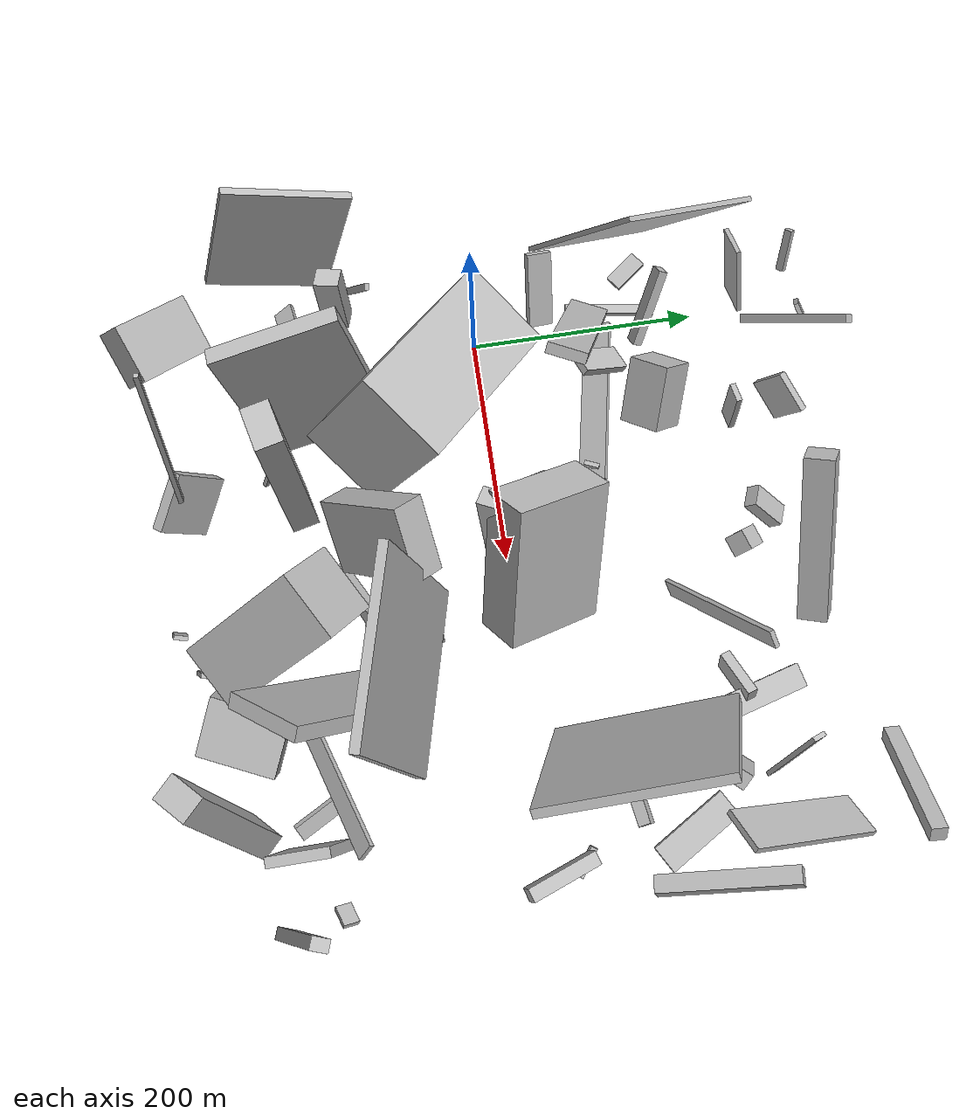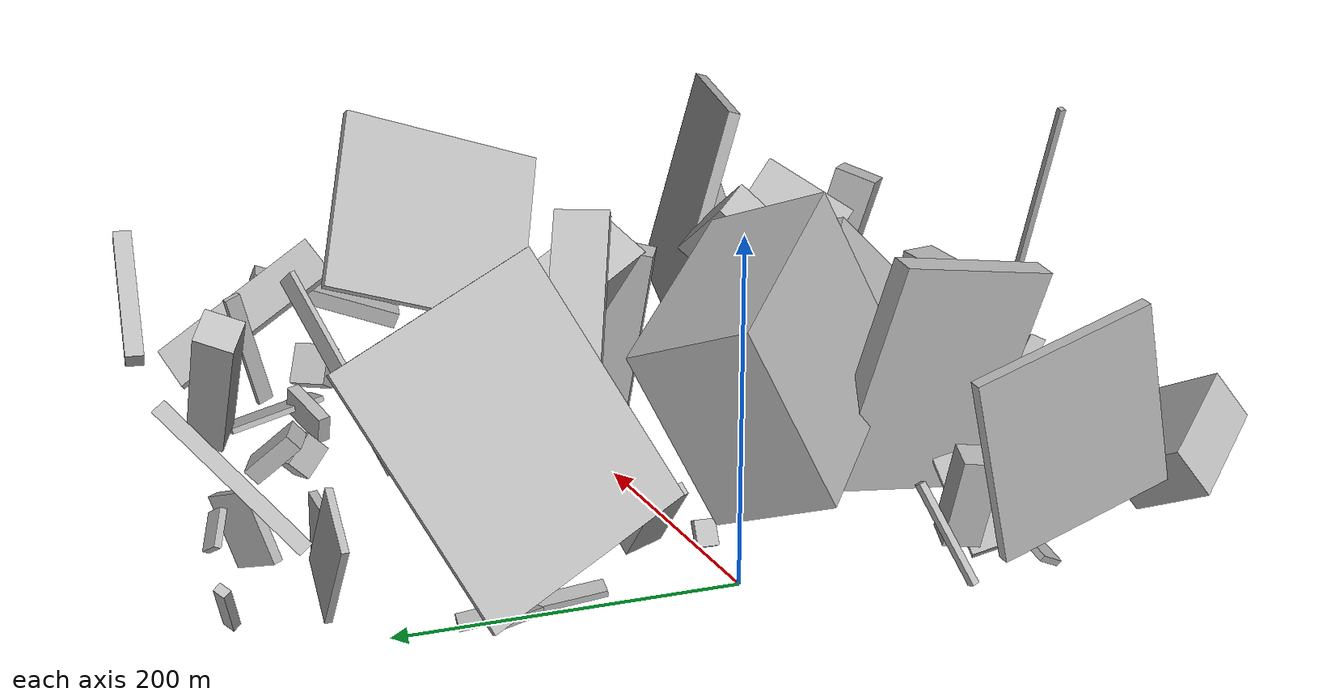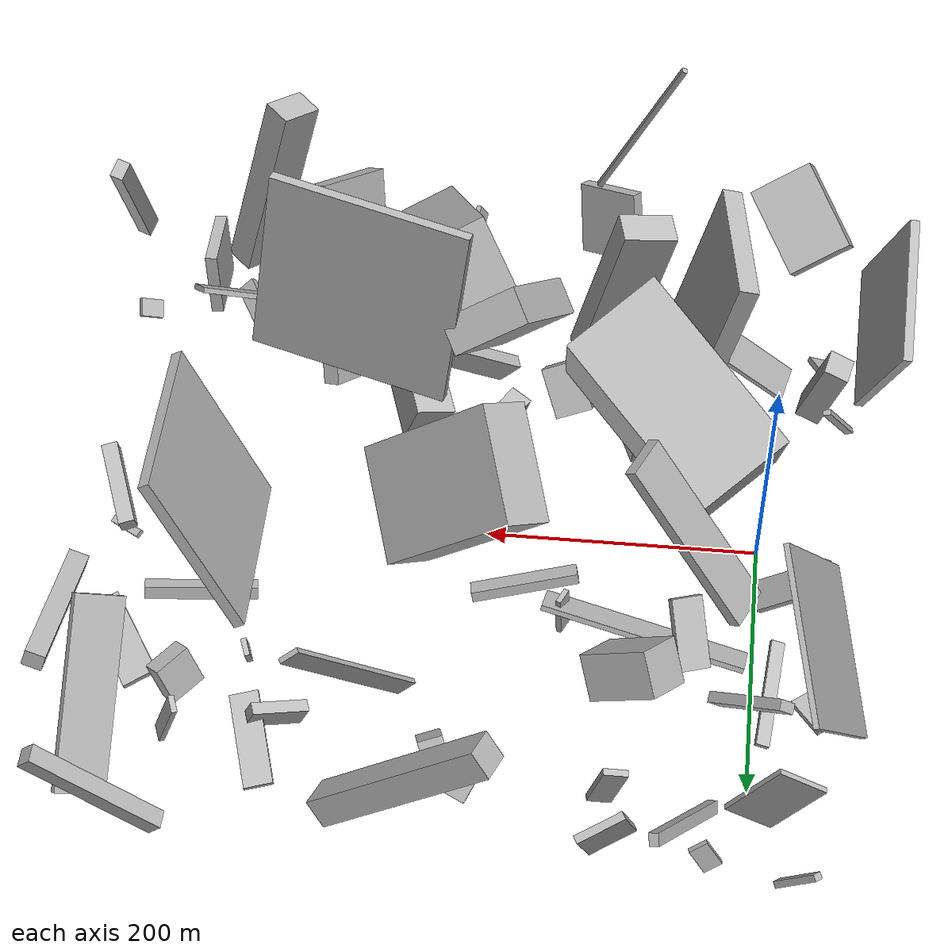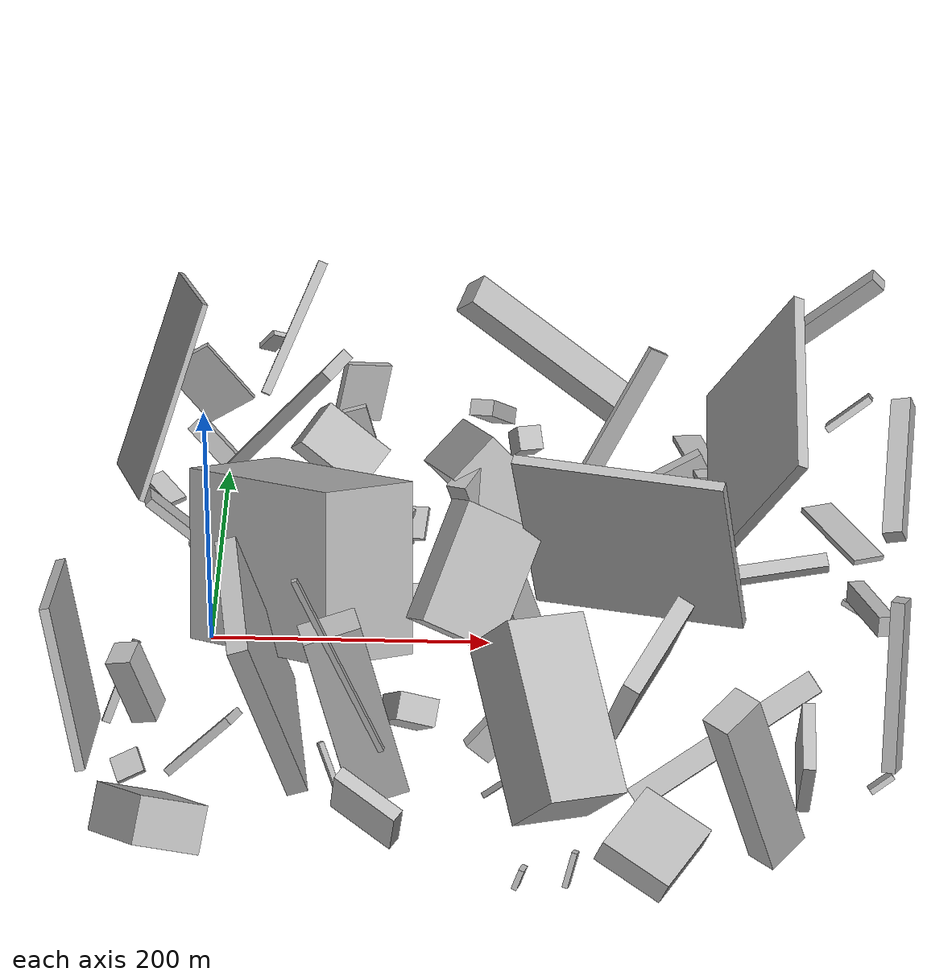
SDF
<sdf version="1.6">
 <world name="default">
  <scene>
   <sky><clouds><speed>12</speed></clouds></sky>
   <ambient>0.4 0.4 0.4 1</ambient>
   <background>0.7 0.7 0.7 1</background>
   <shadows>1</shadows>
  </scene>
  <gravity>0 0 -9.8066</gravity>
  <magnetic_field>6e-06 2.3e-05 -4.2e-05</magnetic_field>
  <physics default="0" name="default_physics" type="ode">
   <ode>
    <solver>
     <type>quick</type>
     <iters>10</iters>
     <sor>1.0</sor>
     <use_dynamic_moi_rescaling>0</use_dynamic_moi_rescaling>
    </solver>
    <constraints>
     <cfm>0</cfm>
     <erp>0.2</erp>
     <contact_max_correcting_vel>100</contact_max_correcting_vel>
     <contact_surface_layer>0.001</contact_surface_layer>
    </constraints>
   </ode>
   <max_step_size>0.004</max_step_size>
   <real_time_factor>1</real_time_factor>
   <real_time_update_rate>250</real_time_update_rate>
  </physics>
  <light name="sun" type="directional">
   <pose>0 0 10 0 0 0</pose>
   <diffuse>0.8 0.8 0.8 1</diffuse>
   <specular>0.2 0.2 0.2 1</specular>
   <attenuation>
    <range>1000</range>
    <constant>0.9</constant>
    <linear>0.01</linear>
    <quadratic>0.001</quadratic>
   </attenuation>
   <direction>-0.5 0.1 -0.9</direction>
  </light>
  <model name="building_1">
   <static>0</static>
   <pose>295.7368813536935 -180.78192036104932 83.84618709407602 0.9961033002784777 -0.3977826952683271 2.776172849643623</pose>
   <link name="link">
    <gravity>0</gravity>
    <pose>0 0 36.5 0 0 0</pose>
    <collision name="collision"><geometry><box><size>13 150 73</size></box></geometry></collision>
    <visual name="visual">
     <cast_shadows>0</cast_shadows>
     <geometry><box><size>13 150 73</size></box></geometry>
     <material>
      <script>
       <uri>model://HANNAS_wall/materials/scripts</uri>
       <uri>model://HANNAS_wall/materials/textures</uri>
       <name>vrc/HANNAS_wall</name>
      </script>
     </material>
    </visual>
   </link>
  </model>
  <model name="building_2">
   <static>0</static>
   <pose>422.6108472823036 -186.3875628921473 33.45652886647019 -0.06520774264016993 0.2650912755314768 -1.5560999492663983</pose>
   <link name="link">
    <gravity>0</gravity>
    <pose>0 0 25.0 0 0 0</pose>
    <collision name="collision"><geometry><box><size>56 9 50</size></box></geometry></collision>
    <visual name="visual">
     <cast_shadows>0</cast_shadows>
     <geometry><box><size>56 9 50</size></box></geometry>
     <material>
      <script>
       <uri>model://HANNAS_wall/materials/scripts</uri>
       <uri>model://HANNAS_wall/materials/textures</uri>
       <name>vrc/HANNAS_wall</name>
      </script>
     </material>
    </visual>
   </link>
  </model>
  <model name="building_3">
   <static>0</static>
   <pose>308.8106083871112 -76.49337372178847 92.5226786474042 0.25505919730946447 -0.05398683686127357 -0.25559730548888393</pose>
   <link name="link">
    <gravity>0</gravity>
    <pose>0 0 75.0 0 0 0</pose>
    <collision name="collision"><geometry><box><size>150 8 150</size></box></geometry></collision>
    <visual name="visual">
     <cast_shadows>0</cast_shadows>
     <geometry><box><size>150 8 150</size></box></geometry>
     <material>
      <script>
       <uri>model://HANNAS_wall/materials/scripts</uri>
       <uri>model://HANNAS_wall/materials/textures</uri>
       <name>vrc/HANNAS_wall</name>
      </script>
     </material>
    </visual>
   </link>
  </model>
  <model name="building_4">
   <static>0</static>
   <pose>208.7619174876653 63.43073856104613 82.52114537507333 1.0101545699164758 -0.5817987842879372 0.6449589706050929</pose>
   <link name="link">
    <gravity>0</gravity>
    <pose>0 0 43.5 0 0 0</pose>
    <collision name="collision"><geometry><box><size>41 127 87</size></box></geometry></collision>
    <visual name="visual">
     <cast_shadows>0</cast_shadows>
     <geometry><box><size>41 127 87</size></box></geometry>
     <material>
      <script>
       <uri>model://HANNAS_wall/materials/scripts</uri>
       <uri>model://HANNAS_wall/materials/textures</uri>
       <name>vrc/HANNAS_wall</name>
      </script>
     </material>
    </visual>
   </link>
  </model>
  <model name="building_5">
   <static>0</static>
   <pose>221.66999670546554 196.96087477723657 25.422922087789306 0.7909478976885873 -0.11235982905937597 -2.8002753814420815</pose>
   <link name="link">
    <gravity>0</gravity>
    <pose>0 0 9.0 0 0 0</pose>
    <collision name="collision"><geometry><box><size>18 23 18</size></box></geometry></collision>
    <visual name="visual">
     <cast_shadows>0</cast_shadows>
     <geometry><box><size>18 23 18</size></box></geometry>
     <material>
      <script>
       <uri>model://HANNAS_wall/materials/scripts</uri>
       <uri>model://HANNAS_wall/materials/textures</uri>
       <name>vrc/HANNAS_wall</name>
      </script>
     </material>
    </visual>
   </link>
  </model>
  <model name="building_6">
   <static>0</static>
   <pose>98.23700007259629 -26.356498254115763 97.60374661458036 1.2315676956228758 -0.3610051393874356 -0.7565758702244203</pose>
   <link name="link">
    <gravity>0</gravity>
    <pose>0 0 39.5 0 0 0</pose>
    <collision name="collision"><geometry><box><size>150 122 79</size></box></geometry></collision>
    <visual name="visual">
     <cast_shadows>0</cast_shadows>
     <geometry><box><size>150 122 79</size></box></geometry>
     <material>
      <script>
       <uri>model://HANNAS_wall/materials/scripts</uri>
       <uri>model://HANNAS_wall/materials/textures</uri>
       <name>vrc/HANNAS_wall</name>
      </script>
     </material>
    </visual>
   </link>
  </model>
  <model name="building_7">
   <static>0</static>
   <pose>161.04999515005898 -115.65128886296142 25.68721365616851 1.0550971694208386 0.7559176208977418 -1.7831272360021468</pose>
   <link name="link">
    <gravity>0</gravity>
    <pose>0 0 14.5 0 0 0</pose>
    <collision name="collision"><geometry><box><size>20 39 29</size></box></geometry></collision>
    <visual name="visual">
     <cast_shadows>0</cast_shadows>
     <geometry><box><size>20 39 29</size></box></geometry>
     <material>
      <script>
       <uri>model://HANNAS_wall/materials/scripts</uri>
       <uri>model://HANNAS_wall/materials/textures</uri>
       <name>vrc/HANNAS_wall</name>
      </script>
     </material>
    </visual>
   </link>
  </model>
  <model name="building_8">
   <static>0</static>
   <pose>210.82005218285278 -7.286987723569774 85.70120462464921 2.4436120600912172 -1.2863596477908994 -2.9525587250908223</pose>
   <link name="link">
    <gravity>0</gravity>
    <pose>0 0 8.0 0 0 0</pose>
    <collision name="collision"><geometry><box><size>150 27 16</size></box></geometry></collision>
    <visual name="visual">
     <cast_shadows>0</cast_shadows>
     <geometry><box><size>150 27 16</size></box></geometry>
     <material>
      <script>
       <uri>model://HANNAS_wall/materials/scripts</uri>
       <uri>model://HANNAS_wall/materials/textures</uri>
       <name>vrc/HANNAS_wall</name>
      </script>
     </material>
    </visual>
   </link>
  </model>
  <model name="building_9">
   <static>0</static>
   <pose>96.43864564451536 -190.13350481140986 32.22985164346281 1.026526883701326 -0.07369833106508514 0.6020639888466551</pose>
   <link name="link">
    <gravity>0</gravity>
    <pose>0 0 2.0 0 0 0</pose>
    <collision name="collision"><geometry><box><size>4 47 4</size></box></geometry></collision>
    <visual name="visual">
     <cast_shadows>0</cast_shadows>
     <geometry><box><size>4 47 4</size></box></geometry>
     <material>
      <script>
       <uri>model://HANNAS_wall/materials/scripts</uri>
       <uri>model://HANNAS_wall/materials/textures</uri>
       <name>vrc/HANNAS_wall</name>
      </script>
     </material>
    </visual>
   </link>
  </model>
  <model name="building_10">
   <static>0</static>
   <pose>-8.167323975146681 125.88273813397751 14.13494491703987 -1.8905470069442585 0.13438098253228764 1.4715578596129175</pose>
   <link name="link">
    <gravity>0</gravity>
    <pose>0 0 5.0 0 0 0</pose>
    <collision name="collision"><geometry><box><size>81 4 10</size></box></geometry></collision>
    <visual name="visual">
     <cast_shadows>0</cast_shadows>
     <geometry><box><size>81 4 10</size></box></geometry>
     <material>
      <script>
       <uri>model://HANNAS_wall/materials/scripts</uri>
       <uri>model://HANNAS_wall/materials/textures</uri>
       <name>vrc/HANNAS_wall</name>
      </script>
     </material>
    </visual>
   </link>
  </model>
  <model name="building_11">
   <static>0</static>
   <pose>25.375936470683293 237.09456933609454 45.363422211061824 0.48694102899145403 0.6754755308988402 1.7268078196470809</pose>
   <link name="link">
    <gravity>0</gravity>
    <pose>0 0 53.5 0 0 0</pose>
    <collision name="collision"><geometry><box><size>9 7 107</size></box></geometry></collision>
    <visual name="visual">
     <cast_shadows>0</cast_shadows>
     <geometry><box><size>9 7 107</size></box></geometry>
     <material>
      <script>
       <uri>model://HANNAS_wall/materials/scripts</uri>
       <uri>model://HANNAS_wall/materials/textures</uri>
       <name>vrc/HANNAS_wall</name>
      </script>
     </material>
    </visual>
   </link>
  </model>
  <model name="building_12">
   <static>0</static>
   <pose>228.22056925296357 257.81061388296655 71.30180712042132 0.756241143536196 -0.330818132722503 1.2265587045634754</pose>
   <link name="link">
    <gravity>0</gravity>
    <pose>0 0 11.0 0 0 0</pose>
    <collision name="collision"><geometry><box><size>25 150 22</size></box></geometry></collision>
    <visual name="visual">
     <cast_shadows>0</cast_shadows>
     <geometry><box><size>25 150 22</size></box></geometry>
     <material>
      <script>
       <uri>model://HANNAS_wall/materials/scripts</uri>
       <uri>model://HANNAS_wall/materials/textures</uri>
       <name>vrc/HANNAS_wall</name>
      </script>
     </material>
    </visual>
   </link>
  </model>
  <model name="building_13">
   <static>0</static>
   <pose>115.55918684886306 -188.58714439941866 79.3382628684201 1.6825379331052386 -1.3541487835041475 -3.0084643579737027</pose>
   <link name="link">
    <gravity>0</gravity>
    <pose>0 0 12.0 0 0 0</pose>
    <collision name="collision"><geometry><box><size>150 41 24</size></box></geometry></collision>
    <visual name="visual">
     <cast_shadows>0</cast_shadows>
     <geometry><box><size>150 41 24</size></box></geometry>
     <material>
      <script>
       <uri>model://HANNAS_wall/materials/scripts</uri>
       <uri>model://HANNAS_wall/materials/textures</uri>
       <name>vrc/HANNAS_wall</name>
      </script>
     </material>
    </visual>
   </link>
  </model>
  <model name="building_14">
   <static>0</static>
   <pose>178.55365674678973 -128.89592078171097 107.75264479671938 0.6459679806178423 -0.5757209220800804 -2.987046087700367</pose>
   <link name="link">
    <gravity>0</gravity>
    <pose>0 0 44.5 0 0 0</pose>
    <collision name="collision"><geometry><box><size>62 28 89</size></box></geometry></collision>
    <visual name="visual">
     <cast_shadows>0</cast_shadows>
     <geometry><box><size>62 28 89</size></box></geometry>
     <material>
      <script>
       <uri>model://HANNAS_wall/materials/scripts</uri>
       <uri>model://HANNAS_wall/materials/textures</uri>
       <name>vrc/HANNAS_wall</name>
      </script>
     </material>
    </visual>
   </link>
  </model>
  <model name="building_15">
   <static>0</static>
   <pose>1.8090490918759454 151.29986784711664 49.27867669038588 2.1079861352014673 -0.6596827023735925 2.628690347995033</pose>
   <link name="link">
    <gravity>0</gravity>
    <pose>0 0 4.0 0 0 0</pose>
    <collision name="collision"><geometry><box><size>69 14 8</size></box></geometry></collision>
    <visual name="visual">
     <cast_shadows>0</cast_shadows>
     <geometry><box><size>69 14 8</size></box></geometry>
     <material>
      <script>
       <uri>model://HANNAS_wall/materials/scripts</uri>
       <uri>model://HANNAS_wall/materials/textures</uri>
       <name>vrc/HANNAS_wall</name>
      </script>
     </material>
    </visual>
   </link>
  </model>
  <model name="building_16">
   <static>0</static>
   <pose>40.303690544630115 -150.41583666341828 91.07222318615385 1.3024834080263998 -0.1374684430563424 1.712151853449219</pose>
   <link name="link">
    <gravity>0</gravity>
    <pose>0 0 7.5 0 0 0</pose>
    <collision name="collision"><geometry><box><size>109 150 15</size></box></geometry></collision>
    <visual name="visual">
     <cast_shadows>0</cast_shadows>
     <geometry><box><size>109 150 15</size></box></geometry>
     <material>
      <script>
       <uri>model://HANNAS_wall/materials/scripts</uri>
       <uri>model://HANNAS_wall/materials/textures</uri>
       <name>vrc/HANNAS_wall</name>
      </script>
     </material>
    </visual>
   </link>
  </model>
  <model name="building_17">
   <static>0</static>
   <pose>-35.819549619033516 284.5344902303843 43.34115765932148 1.059756671300898 0.5448442917373411 2.040307811260382</pose>
   <link name="link">
    <gravity>0</gravity>
    <pose>0 0 3.5 0 0 0</pose>
    <collision name="collision"><geometry><box><size>5 38 7</size></box></geometry></collision>
    <visual name="visual">
     <cast_shadows>0</cast_shadows>
     <geometry><box><size>5 38 7</size></box></geometry>
     <material>
      <script>
       <uri>model://HANNAS_wall/materials/scripts</uri>
       <uri>model://HANNAS_wall/materials/textures</uri>
       <name>vrc/HANNAS_wall</name>
      </script>
     </material>
    </visual>
   </link>
  </model>
  <model name="building_18">
   <static>0</static>
   <pose>98.16012085786303 255.40510485729044 34.8536880145819 1.7516815153417267 -0.3203703402351192 -2.6862198423830854</pose>
   <link name="link">
    <gravity>0</gravity>
    <pose>0 0 3.0 0 0 0</pose>
    <collision name="collision"><geometry><box><size>37 44 6</size></box></geometry></collision>
    <visual name="visual">
     <cast_shadows>0</cast_shadows>
     <geometry><box><size>37 44 6</size></box></geometry>
     <material>
      <script>
       <uri>model://HANNAS_wall/materials/scripts</uri>
       <uri>model://HANNAS_wall/materials/textures</uri>
       <name>vrc/HANNAS_wall</name>
      </script>
     </material>
    </visual>
   </link>
  </model>
  <model name="building_19">
   <static>0</static>
   <pose>435.5140587561989 153.21011721911765 12.569193363985281 -1.578417181450938 1.3840192431398248 -2.6045134866351742</pose>
   <link name="link">
    <gravity>0</gravity>
    <pose>0 0 36.5 0 0 0</pose>
    <collision name="collision"><geometry><box><size>4 26 73</size></box></geometry></collision>
    <visual name="visual">
     <cast_shadows>0</cast_shadows>
     <geometry><box><size>4 26 73</size></box></geometry>
     <material>
      <script>
       <uri>model://HANNAS_wall/materials/scripts</uri>
       <uri>model://HANNAS_wall/materials/textures</uri>
       <name>vrc/HANNAS_wall</name>
      </script>
     </material>
    </visual>
   </link>
  </model>
  <model name="building_20">
   <static>0</static>
   <pose>357.98558500572545 87.65114190587832 84.09165166484178 0.3295269870446786 0.44223764762688395 0.16980355664930852</pose>
   <link name="link">
    <gravity>0</gravity>
    <pose>0 0 66.5 0 0 0</pose>
    <collision name="collision"><geometry><box><size>8 150 133</size></box></geometry></collision>
    <visual name="visual">
     <cast_shadows>0</cast_shadows>
     <geometry><box><size>8 150 133</size></box></geometry>
     <material>
      <script>
       <uri>model://HANNAS_wall/materials/scripts</uri>
       <uri>model://HANNAS_wall/materials/textures</uri>
       <name>vrc/HANNAS_wall</name>
      </script>
     </material>
    </visual>
   </link>
  </model>
  <model name="building_21">
   <static>0</static>
   <pose>275.7528646671101 161.55839098359877 68.66317240256541 2.189252774818488 0.13745550272944276 2.0222227898869614</pose>
   <link name="link">
    <gravity>0</gravity>
    <pose>0 0 8.0 0 0 0</pose>
    <collision name="collision"><geometry><box><size>4 150 16</size></box></geometry></collision>
    <visual name="visual">
     <cast_shadows>0</cast_shadows>
     <geometry><box><size>4 150 16</size></box></geometry>
     <material>
      <script>
       <uri>model://HANNAS_wall/materials/scripts</uri>
       <uri>model://HANNAS_wall/materials/textures</uri>
       <name>vrc/HANNAS_wall</name>
      </script>
     </material>
    </visual>
   </link>
  </model>
  <model name="building_22">
   <static>0</static>
   <pose>406.79374707984107 206.48491571596023 52.94027879882602 1.6993004112780177 -0.3279665537717322 -1.2258447793902818</pose>
   <link name="link">
    <gravity>0</gravity>
    <pose>0 0 2.0 0 0 0</pose>
    <collision name="collision"><geometry><box><size>12 90 4</size></box></geometry></collision>
    <visual name="visual">
     <cast_shadows>0</cast_shadows>
     <geometry><box><size>12 90 4</size></box></geometry>
     <material>
      <script>
       <uri>model://HANNAS_wall/materials/scripts</uri>
       <uri>model://HANNAS_wall/materials/textures</uri>
       <name>vrc/HANNAS_wall</name>
      </script>
     </material>
    </visual>
   </link>
  </model>
  <model name="building_23">
   <static>0</static>
   <pose>122.7568381232353 -246.39871250602715 35.839617000780606 -0.39595834134432883 -0.35462425167331113 2.6229077374172203</pose>
   <link name="link">
    <gravity>0</gravity>
    <pose>0 0 27.5 0 0 0</pose>
    <collision name="collision"><geometry><box><size>51 10 55</size></box></geometry></collision>
    <visual name="visual">
     <cast_shadows>0</cast_shadows>
     <geometry><box><size>51 10 55</size></box></geometry>
     <material>
      <script>
       <uri>model://HANNAS_wall/materials/scripts</uri>
       <uri>model://HANNAS_wall/materials/textures</uri>
       <name>vrc/HANNAS_wall</name>
      </script>
     </material>
    </visual>
   </link>
  </model>
  <model name="building_24">
   <static>0</static>
   <pose>47.503625194846116 7.29317286253275 13.646597568018557 -1.679485133877428 1.0820573720514215 3.116887877153287</pose>
   <link name="link">
    <gravity>0</gravity>
    <pose>0 0 7.0 0 0 0</pose>
    <collision name="collision"><geometry><box><size>16 4 14</size></box></geometry></collision>
    <visual name="visual">
     <cast_shadows>0</cast_shadows>
     <geometry><box><size>16 4 14</size></box></geometry>
     <material>
      <script>
       <uri>model://HANNAS_wall/materials/scripts</uri>
       <uri>model://HANNAS_wall/materials/textures</uri>
       <name>vrc/HANNAS_wall</name>
      </script>
     </material>
    </visual>
   </link>
  </model>
  <model name="building_25">
   <static>0</static>
   <pose>263.602926681496 -94.78202329098576 24.77259529289604 0.30822225691555183 -0.09447905485271808 -1.2537336690591834</pose>
   <link name="link">
    <gravity>0</gravity>
    <pose>0 0 17.5 0 0 0</pose>
    <collision name="collision"><geometry><box><size>56 30 35</size></box></geometry></collision>
    <visual name="visual">
     <cast_shadows>0</cast_shadows>
     <geometry><box><size>56 30 35</size></box></geometry>
     <material>
      <script>
       <uri>model://HANNAS_wall/materials/scripts</uri>
       <uri>model://HANNAS_wall/materials/textures</uri>
       <name>vrc/HANNAS_wall</name>
      </script>
     </material>
    </visual>
   </link>
  </model>
  <model name="building_26">
   <static>0</static>
   <pose>203.1278325349338 235.50308257651005 30.666357204405127 -0.3225998727009928 -0.8140510669074341 1.4225069682464369</pose>
   <link name="link">
    <gravity>0</gravity>
    <pose>0 0 19.0 0 0 0</pose>
    <collision name="collision"><geometry><box><size>12 19 38</size></box></geometry></collision>
    <visual name="visual">
     <cast_shadows>0</cast_shadows>
     <geometry><box><size>12 19 38</size></box></geometry>
     <material>
      <script>
       <uri>model://HANNAS_wall/materials/scripts</uri>
       <uri>model://HANNAS_wall/materials/textures</uri>
       <name>vrc/HANNAS_wall</name>
      </script>
     </material>
    </visual>
   </link>
  </model>
  <model name="building_27">
   <static>0</static>
   <pose>77.8065790075875 85.79542994181668 29.377461191263492 -1.0237469499091358 -0.11512349018614486 -0.19993301439333414</pose>
   <link name="link">
    <gravity>0</gravity>
    <pose>0 0 12.5 0 0 0</pose>
    <collision name="collision"><geometry><box><size>150 4 25</size></box></geometry></collision>
    <visual name="visual">
     <cast_shadows>0</cast_shadows>
     <geometry><box><size>150 4 25</size></box></geometry>
     <material>
      <script>
       <uri>model://HANNAS_wall/materials/scripts</uri>
       <uri>model://HANNAS_wall/materials/textures</uri>
       <name>vrc/HANNAS_wall</name>
      </script>
     </material>
    </visual>
   </link>
  </model>
  <model name="building_28">
   <static>0</static>
   <pose>42.5041904131806 123.4113145124433 34.06262289794258 -0.8792258991615638 0.14616300300805263 -2.773620669722566</pose>
   <link name="link">
    <gravity>0</gravity>
    <pose>0 0 26.0 0 0 0</pose>
    <collision name="collision"><geometry><box><size>23 7 52</size></box></geometry></collision>
    <visual name="visual">
     <cast_shadows>0</cast_shadows>
     <geometry><box><size>23 7 52</size></box></geometry>
     <material>
      <script>
       <uri>model://HANNAS_wall/materials/scripts</uri>
       <uri>model://HANNAS_wall/materials/textures</uri>
       <name>vrc/HANNAS_wall</name>
      </script>
     </material>
    </visual>
   </link>
  </model>
  <model name="building_29">
   <static>0</static>
   <pose>29.78716101736316 280.93699358734943 60.27233391941458 -1.102335367605262 0.4740542080339787 0.3781707924088866</pose>
   <link name="link">
    <gravity>0</gravity>
    <pose>0 0 2.0 0 0 0</pose>
    <collision name="collision"><geometry><box><size>14 21 4</size></box></geometry></collision>
    <visual name="visual">
     <cast_shadows>0</cast_shadows>
     <geometry><box><size>14 21 4</size></box></geometry>
     <material>
      <script>
       <uri>model://HANNAS_wall/materials/scripts</uri>
       <uri>model://HANNAS_wall/materials/textures</uri>
       <name>vrc/HANNAS_wall</name>
      </script>
     </material>
    </visual>
   </link>
  </model>
  <model name="building_30">
   <static>0</static>
   <pose>323.7779026936621 -242.3091713738737 25.419554537035996 -3.104166780343979 -0.3790659483637897 2.6977535538960065</pose>
   <link name="link">
    <gravity>0</gravity>
    <pose>0 0 9.0 0 0 0</pose>
    <collision name="collision"><geometry><box><size>54 70 18</size></box></geometry></collision>
    <visual name="visual">
     <cast_shadows>0</cast_shadows>
     <geometry><box><size>54 70 18</size></box></geometry>
     <material>
      <script>
       <uri>model://HANNAS_wall/materials/scripts</uri>
       <uri>model://HANNAS_wall/materials/textures</uri>
       <name>vrc/HANNAS_wall</name>
      </script>
     </material>
    </visual>
   </link>
  </model>
  <model name="building_31">
   <static>0</static>
   <pose>227.59608747879207 -132.60309131720334 47.67451312438696 1.8452771187517627 -0.8052101512885611 -3.047454131739947</pose>
   <link name="link">
    <gravity>0</gravity>
    <pose>0 0 5.0 0 0 0</pose>
    <collision name="collision"><geometry><box><size>22 92 10</size></box></geometry></collision>
    <visual name="visual">
     <cast_shadows>0</cast_shadows>
     <geometry><box><size>22 92 10</size></box></geometry>
     <material>
      <script>
       <uri>model://HANNAS_wall/materials/scripts</uri>
       <uri>model://HANNAS_wall/materials/textures</uri>
       <name>vrc/HANNAS_wall</name>
      </script>
     </material>
    </visual>
   </link>
  </model>
  <model name="building_32">
   <static>0</static>
   <pose>339.3060908748006 233.00285359625857 15.387837925606021 -0.6133330174174692 1.3768931852065562 -1.919357759118602</pose>
   <link name="link">
    <gravity>0</gravity>
    <pose>0 0 35.0 0 0 0</pose>
    <collision name="collision"><geometry><box><size>4 21 70</size></box></geometry></collision>
    <visual name="visual">
     <cast_shadows>0</cast_shadows>
     <geometry><box><size>4 21 70</size></box></geometry>
     <material>
      <script>
       <uri>model://HANNAS_wall/materials/scripts</uri>
       <uri>model://HANNAS_wall/materials/textures</uri>
       <name>vrc/HANNAS_wall</name>
      </script>
     </material>
    </visual>
   </link>
  </model>
  <model name="building_33">
   <static>0</static>
   <pose>442.79964206204 192.39076477571774 56.59156894241039 -0.9082888526458461 -0.6070165514046092 -1.6119919847277115</pose>
   <link name="link">
    <gravity>0</gravity>
    <pose>0 0 19.5 0 0 0</pose>
    <collision name="collision"><geometry><box><size>138 5 39</size></box></geometry></collision>
    <visual name="visual">
     <cast_shadows>0</cast_shadows>
     <geometry><box><size>138 5 39</size></box></geometry>
     <material>
      <script>
       <uri>model://HANNAS_wall/materials/scripts</uri>
       <uri>model://HANNAS_wall/materials/textures</uri>
       <name>vrc/HANNAS_wall</name>
      </script>
     </material>
    </visual>
   </link>
  </model>
  <model name="building_34">
   <static>0</static>
   <pose>81.65973984703349 156.17640021175362 52.71041061432207 -0.6170793415063043 -0.613807994006209 2.850271183212828</pose>
   <link name="link">
    <gravity>0</gravity>
    <pose>0 0 17.0 0 0 0</pose>
    <collision name="collision"><geometry><box><size>56 37 34</size></box></geometry></collision>
    <visual name="visual">
     <cast_shadows>0</cast_shadows>
     <geometry><box><size>56 37 34</size></box></geometry>
     <material>
      <script>
       <uri>model://HANNAS_wall/materials/scripts</uri>
       <uri>model://HANNAS_wall/materials/textures</uri>
       <name>vrc/HANNAS_wall</name>
      </script>
     </material>
    </visual>
   </link>
  </model>
  <model name="building_35">
   <static>0</static>
   <pose>0.048551106930018406 59.682302777089404 34.48454750978946 -0.8159756839233487 0.2434942724910893 1.7093020116009405</pose>
   <link name="link">
    <gravity>0</gravity>
    <pose>0 0 32.5 0 0 0</pose>
    <collision name="collision"><geometry><box><size>22 7 65</size></box></geometry></collision>
    <visual name="visual">
     <cast_shadows>0</cast_shadows>
     <geometry><box><size>22 7 65</size></box></geometry>
     <material>
      <script>
       <uri>model://HANNAS_wall/materials/scripts</uri>
       <uri>model://HANNAS_wall/materials/textures</uri>
       <name>vrc/HANNAS_wall</name>
      </script>
     </material>
    </visual>
   </link>
  </model>
  <model name="building_36">
   <static>0</static>
   <pose>402.6105862773733 72.79522533799063 17.879804062345816 3.0306276094115 -0.42555654164595497 1.7583172732470311</pose>
   <link name="link">
    <gravity>0</gravity>
    <pose>0 0 5.0 0 0 0</pose>
    <collision name="collision"><geometry><box><size>11 82 10</size></box></geometry></collision>
    <visual name="visual">
     <cast_shadows>0</cast_shadows>
     <geometry><box><size>11 82 10</size></box></geometry>
     <material>
      <script>
       <uri>model://HANNAS_wall/materials/scripts</uri>
       <uri>model://HANNAS_wall/materials/textures</uri>
       <name>vrc/HANNAS_wall</name>
      </script>
     </material>
    </visual>
   </link>
  </model>
  <model name="building_37">
   <static>0</static>
   <pose>368.9136136428288 -166.96642143792866 49.60860742975099 0.6824574826989308 -0.4933743568992541 0.3586721530700256</pose>
   <link name="link">
    <gravity>0</gravity>
    <pose>0 0 2.0 0 0 0</pose>
    <collision name="collision"><geometry><box><size>150 17 4</size></box></geometry></collision>
    <visual name="visual">
     <cast_shadows>0</cast_shadows>
     <geometry><box><size>150 17 4</size></box></geometry>
     <material>
      <script>
       <uri>model://HANNAS_wall/materials/scripts</uri>
       <uri>model://HANNAS_wall/materials/textures</uri>
       <name>vrc/HANNAS_wall</name>
      </script>
     </material>
    </visual>
   </link>
  </model>
  <model name="building_38">
   <static>0</static>
   <pose>137.79619768504335 86.24802784318153 19.08140068472559 -0.08596125020662607 0.09400020396734808 -1.9994242632441719</pose>
   <link name="link">
    <gravity>0</gravity>
    <pose>0 0 17.0 0 0 0</pose>
    <collision name="collision"><geometry><box><size>13 4 34</size></box></geometry></collision>
    <visual name="visual">
     <cast_shadows>0</cast_shadows>
     <geometry><box><size>13 4 34</size></box></geometry>
     <material>
      <script>
       <uri>model://HANNAS_wall/materials/scripts</uri>
       <uri>model://HANNAS_wall/materials/textures</uri>
       <name>vrc/HANNAS_wall</name>
      </script>
     </material>
    </visual>
   </link>
  </model>
  <model name="building_39">
   <static>0</static>
   <pose>463.65731645833745 24.39479785501196 16.714294568934317 -1.9408002150195371 0.1774100441119037 -0.609211644673577</pose>
   <link name="link">
    <gravity>0</gravity>
    <pose>0 0 3.0 0 0 0</pose>
    <collision name="collision"><geometry><box><size>27 4 6</size></box></geometry></collision>
    <visual name="visual">
     <cast_shadows>0</cast_shadows>
     <geometry><box><size>27 4 6</size></box></geometry>
     <material>
      <script>
       <uri>model://HANNAS_wall/materials/scripts</uri>
       <uri>model://HANNAS_wall/materials/textures</uri>
       <name>vrc/HANNAS_wall</name>
      </script>
     </material>
    </visual>
   </link>
  </model>
  <model name="building_40">
   <static>0</static>
   <pose>486.6000955324568 132.68148669990643 62.85340714024068 1.2829877765738837 -0.34883483069796206 1.5081267653969967</pose>
   <link name="link">
    <gravity>0</gravity>
    <pose>0 0 7.5 0 0 0</pose>
    <collision name="collision"><geometry><box><size>117 13 15</size></box></geometry></collision>
    <visual name="visual">
     <cast_shadows>0</cast_shadows>
     <geometry><box><size>117 13 15</size></box></geometry>
     <material>
      <script>
       <uri>model://HANNAS_wall/materials/scripts</uri>
       <uri>model://HANNAS_wall/materials/textures</uri>
       <name>vrc/HANNAS_wall</name>
      </script>
     </material>
    </visual>
   </link>
  </model>
  <model name="building_41">
   <static>0</static>
   <pose>-40.27504694790377 -248.26832248637947 43.111379669337346 0.7502638831239791 -0.9065989719179182 1.2878279589845614</pose>
   <link name="link">
    <gravity>0</gravity>
    <pose>0 0 35.5 0 0 0</pose>
    <collision name="collision"><geometry><box><size>34 51 71</size></box></geometry></collision>
    <visual name="visual">
     <cast_shadows>0</cast_shadows>
     <geometry><box><size>34 51 71</size></box></geometry>
     <material>
      <script>
       <uri>model://HANNAS_wall/materials/scripts</uri>
       <uri>model://HANNAS_wall/materials/textures</uri>
       <name>vrc/HANNAS_wall</name>
      </script>
     </material>
    </visual>
   </link>
  </model>
  <model name="building_42">
   <static>0</static>
   <pose>-34.70469414310838 -121.0160849091303 54.92782679710189 1.863282769526964 0.09438514806159871 -1.7978102730813335</pose>
   <link name="link">
    <gravity>0</gravity>
    <pose>0 0 9.5 0 0 0</pose>
    <collision name="collision"><geometry><box><size>22 56 19</size></box></geometry></collision>
    <visual name="visual">
     <cast_shadows>0</cast_shadows>
     <geometry><box><size>22 56 19</size></box></geometry>
     <material>
      <script>
       <uri>model://HANNAS_wall/materials/scripts</uri>
       <uri>model://HANNAS_wall/materials/textures</uri>
       <name>vrc/HANNAS_wall</name>
      </script>
     </material>
    </visual>
   </link>
  </model>
  <model name="building_43">
   <static>0</static>
   <pose>396.73997614501945 -261.62331786374295 87.08995916008902 1.59879034419475 0.3091434797448169 -2.327098334525927</pose>
   <link name="link">
    <gravity>0</gravity>
    <pose>0 0 11.5 0 0 0</pose>
    <collision name="collision"><geometry><box><size>33 150 23</size></box></geometry></collision>
    <visual name="visual">
     <cast_shadows>0</cast_shadows>
     <geometry><box><size>33 150 23</size></box></geometry>
     <material>
      <script>
       <uri>model://HANNAS_wall/materials/scripts</uri>
       <uri>model://HANNAS_wall/materials/textures</uri>
       <name>vrc/HANNAS_wall</name>
      </script>
     </material>
    </visual>
   </link>
  </model>
  <model name="building_44">
   <static>0</static>
   <pose>-83.76612020411976 -105.64624033138769 79.41778128937824 1.2309418493316655 -0.1907053172971093 0.05873822066969978</pose>
   <link name="link">
    <gravity>0</gravity>
    <pose>0 0 54.0 0 0 0</pose>
    <collision name="collision"><geometry><box><size>7 119 108</size></box></geometry></collision>
    <visual name="visual">
     <cast_shadows>0</cast_shadows>
     <geometry><box><size>7 119 108</size></box></geometry>
     <material>
      <script>
       <uri>model://HANNAS_wall/materials/scripts</uri>
       <uri>model://HANNAS_wall/materials/textures</uri>
       <name>vrc/HANNAS_wall</name>
      </script>
     </material>
    </visual>
   </link>
  </model>
  <model name="building_45">
   <static>0</static>
   <pose>2.2838042667328082 -164.35291434074233 31.65651285175042 -2.0440472657455446 -0.7960519408615103 0.06826790022269066</pose>
   <link name="link">
    <gravity>0</gravity>
    <pose>0 0 12.5 0 0 0</pose>
    <collision name="collision"><geometry><box><size>63 6 25</size></box></geometry></collision>
    <visual name="visual">
     <cast_shadows>0</cast_shadows>
     <geometry><box><size>63 6 25</size></box></geometry>
     <material>
      <script>
       <uri>model://HANNAS_wall/materials/scripts</uri>
       <uri>model://HANNAS_wall/materials/textures</uri>
       <name>vrc/HANNAS_wall</name>
      </script>
     </material>
    </visual>
   </link>
  </model>
  <model name="building_46">
   <static>0</static>
   <pose>213.182464676467 -181.5767989985486 17.25575769611788 1.213582265898697 -0.8395676169952806 -0.4290013644418259</pose>
   <link name="link">
    <gravity>0</gravity>
    <pose>0 0 2.0 0 0 0</pose>
    <collision name="collision"><geometry><box><size>31 4 4</size></box></geometry></collision>
    <visual name="visual">
     <cast_shadows>0</cast_shadows>
     <geometry><box><size>31 4 4</size></box></geometry>
     <material>
      <script>
       <uri>model://HANNAS_wall/materials/scripts</uri>
       <uri>model://HANNAS_wall/materials/textures</uri>
       <name>vrc/HANNAS_wall</name>
      </script>
     </material>
    </visual>
   </link>
  </model>
  <model name="building_47">
   <static>0</static>
   <pose>227.64447586258484 -288.020754580272 16.327306382524437 0.358140412903742 -0.27528223664502777 2.8405123066659117</pose>
   <link name="link">
    <gravity>0</gravity>
    <pose>0 0 7.5 0 0 0</pose>
    <collision name="collision"><geometry><box><size>4 12 15</size></box></geometry></collision>
    <visual name="visual">
     <cast_shadows>0</cast_shadows>
     <geometry><box><size>4 12 15</size></box></geometry>
     <material>
      <script>
       <uri>model://HANNAS_wall/materials/scripts</uri>
       <uri>model://HANNAS_wall/materials/textures</uri>
       <name>vrc/HANNAS_wall</name>
      </script>
     </material>
    </visual>
   </link>
  </model>
  <model name="building_48">
   <static>0</static>
   <pose>398.95767839828653 285.8616118914764 53.69124721115996 0.8264846239490214 0.0017952589951488386 1.5229773936540791</pose>
   <link name="link">
    <gravity>0</gravity>
    <pose>0 0 54.5 0 0 0</pose>
    <collision name="collision"><geometry><box><size>13 13 109</size></box></geometry></collision>
    <visual name="visual">
     <cast_shadows>0</cast_shadows>
     <geometry><box><size>13 13 109</size></box></geometry>
     <material>
      <script>
       <uri>model://HANNAS_wall/materials/scripts</uri>
       <uri>model://HANNAS_wall/materials/textures</uri>
       <name>vrc/HANNAS_wall</name>
      </script>
     </material>
    </visual>
   </link>
  </model>
  <model name="building_49">
   <static>0</static>
   <pose>98.04697442356998 214.42872342647885 26.288459710205565 1.8460642630803326 -1.32179869602432 2.983962829057594</pose>
   <link name="link">
    <gravity>0</gravity>
    <pose>0 0 2.5 0 0 0</pose>
    <collision name="collision"><geometry><box><size>44 18 5</size></box></geometry></collision>
    <visual name="visual">
     <cast_shadows>0</cast_shadows>
     <geometry><box><size>44 18 5</size></box></geometry>
     <material>
      <script>
       <uri>model://HANNAS_wall/materials/scripts</uri>
       <uri>model://HANNAS_wall/materials/textures</uri>
       <name>vrc/HANNAS_wall</name>
      </script>
     </material>
    </visual>
   </link>
  </model>
  <model name="building_50">
   <static>0</static>
   <pose>335.52107787626346 173.24051296023282 22.541248579844236 1.7158241303985524 0.34747091310062306 -2.772450540954964</pose>
   <link name="link">
    <gravity>0</gravity>
    <pose>0 0 4.5 0 0 0</pose>
    <collision name="collision"><geometry><box><size>42 20 9</size></box></geometry></collision>
    <visual name="visual">
     <cast_shadows>0</cast_shadows>
     <geometry><box><size>42 20 9</size></box></geometry>
     <material>
      <script>
       <uri>model://HANNAS_wall/materials/scripts</uri>
       <uri>model://HANNAS_wall/materials/textures</uri>
       <name>vrc/HANNAS_wall</name>
      </script>
     </material>
    </visual>
   </link>
  </model>
  <model name="building_51">
   <static>0</static>
   <pose>10.411623906883808 98.47685231958661 79.59658600481819 -0.006278512346798357 0.6356746068152702 -0.4586586044051892</pose>
   <link name="link">
    <gravity>0</gravity>
    <pose>0 0 75.0 0 0 0</pose>
    <collision name="collision"><geometry><box><size>9 32 150</size></box></geometry></collision>
    <visual name="visual">
     <cast_shadows>0</cast_shadows>
     <geometry><box><size>9 32 150</size></box></geometry>
     <material>
      <script>
       <uri>model://HANNAS_wall/materials/scripts</uri>
       <uri>model://HANNAS_wall/materials/textures</uri>
       <name>vrc/HANNAS_wall</name>
      </script>
     </material>
    </visual>
   </link>
  </model>
  <model name="building_52">
   <static>0</static>
   <pose>416.5267087293346 168.87829583460865 34.407022715868564 1.4682014712481122 -1.0958979451572415 -0.6172469027057954</pose>
   <link name="link">
    <gravity>0</gravity>
    <pose>0 0 14.0 0 0 0</pose>
    <collision name="collision"><geometry><box><size>30 15 28</size></box></geometry></collision>
    <visual name="visual">
     <cast_shadows>0</cast_shadows>
     <geometry><box><size>30 15 28</size></box></geometry>
     <material>
      <script>
       <uri>model://HANNAS_wall/materials/scripts</uri>
       <uri>model://HANNAS_wall/materials/textures</uri>
       <name>vrc/HANNAS_wall</name>
      </script>
     </material>
    </visual>
   </link>
  </model>
  <model name="building_53">
   <static>0</static>
   <pose>482.41886103533335 -217.4192774232124 68.06716961806015 0.34234059592863986 0.09490297361348805 2.81214882755913</pose>
   <link name="link">
    <gravity>0</gravity>
    <pose>0 0 61.0 0 0 0</pose>
    <collision name="collision"><geometry><box><size>10 14 122</size></box></geometry></collision>
    <visual name="visual">
     <cast_shadows>0</cast_shadows>
     <geometry><box><size>10 14 122</size></box></geometry>
     <material>
      <script>
       <uri>model://HANNAS_wall/materials/scripts</uri>
       <uri>model://HANNAS_wall/materials/textures</uri>
       <name>vrc/HANNAS_wall</name>
      </script>
     </material>
    </visual>
   </link>
  </model>
  <model name="building_54">
   <static>0</static>
   <pose>477.17370444828725 -167.34682598929996 17.288722854330906 1.0208317935478544 -0.5047188891628751 0.39427882744753556</pose>
   <link name="link">
    <gravity>0</gravity>
    <pose>0 0 7.0 0 0 0</pose>
    <collision name="collision"><geometry><box><size>19 4 14</size></box></geometry></collision>
    <visual name="visual">
     <cast_shadows>0</cast_shadows>
     <geometry><box><size>19 4 14</size></box></geometry>
     <material>
      <script>
       <uri>model://HANNAS_wall/materials/scripts</uri>
       <uri>model://HANNAS_wall/materials/textures</uri>
       <name>vrc/HANNAS_wall</name>
      </script>
     </material>
    </visual>
   </link>
  </model>
  <model name="building_55">
   <static>0</static>
   <pose>221.21905685389524 -208.394187675841 94.56253003409908 1.905586798929974 0.8484725722010283 2.337300319267051</pose>
   <link name="link">
    <gravity>0</gravity>
    <pose>0 0 30.0 0 0 0</pose>
    <collision name="collision"><geometry><box><size>60 130 60</size></box></geometry></collision>
    <visual name="visual">
     <cast_shadows>0</cast_shadows>
     <geometry><box><size>60 130 60</size></box></geometry>
     <material>
      <script>
       <uri>model://HANNAS_wall/materials/scripts</uri>
       <uri>model://HANNAS_wall/materials/textures</uri>
       <name>vrc/HANNAS_wall</name>
      </script>
     </material>
    </visual>
   </link>
  </model>
  <model name="building_56">
   <static>0</static>
   <pose>466.7916246463907 2.579354752812989 35.85972623169846 -1.7008499344459647 -0.2167645634074963 -1.2277806837604854</pose>
   <link name="link">
    <gravity>0</gravity>
    <pose>0 0 6.0 0 0 0</pose>
    <collision name="collision"><geometry><box><size>64 15 12</size></box></geometry></collision>
    <visual name="visual">
     <cast_shadows>0</cast_shadows>
     <geometry><box><size>64 15 12</size></box></geometry>
     <material>
      <script>
       <uri>model://HANNAS_wall/materials/scripts</uri>
       <uri>model://HANNAS_wall/materials/textures</uri>
       <name>vrc/HANNAS_wall</name>
      </script>
     </material>
    </visual>
   </link>
  </model>
  <model name="building_57">
   <static>0</static>
   <pose>-56.41254793401954 199.96654377394813 92.92541151110174 1.1293947274658562 0.3719227869111461 0.0687236918503985</pose>
   <link name="link">
    <gravity>0</gravity>
    <pose>0 0 61.5 0 0 0</pose>
    <collision name="collision"><geometry><box><size>4 150 123</size></box></geometry></collision>
    <visual name="visual">
     <cast_shadows>0</cast_shadows>
     <geometry><box><size>4 150 123</size></box></geometry>
     <material>
      <script>
       <uri>model://HANNAS_wall/materials/scripts</uri>
       <uri>model://HANNAS_wall/materials/textures</uri>
       <name>vrc/HANNAS_wall</name>
      </script>
     </material>
    </visual>
   </link>
  </model>
  <model name="building_58">
   <static>0</static>
   <pose>-16.226917286664033 231.44551812876185 57.10747875637341 1.494342218908447 -0.9756428969790969 -3.038167087487284</pose>
   <link name="link">
    <gravity>0</gravity>
    <pose>0 0 2.0 0 0 0</pose>
    <collision name="collision"><geometry><box><size>60 40 4</size></box></geometry></collision>
    <visual name="visual">
     <cast_shadows>0</cast_shadows>
     <geometry><box><size>60 40 4</size></box></geometry>
     <material>
      <script>
       <uri>model://HANNAS_wall/materials/scripts</uri>
       <uri>model://HANNAS_wall/materials/textures</uri>
       <name>vrc/HANNAS_wall</name>
      </script>
     </material>
    </visual>
   </link>
  </model>
  <model name="building_59">
   <static>0</static>
   <pose>264.09299347953197 -274.05509697954466 19.851170180685383 1.963198301572626 -0.14666836364201216 2.8330261370939023</pose>
   <link name="link">
    <gravity>0</gravity>
    <pose>0 0 3.5 0 0 0</pose>
    <collision name="collision"><geometry><box><size>4 26 7</size></box></geometry></collision>
    <visual name="visual">
     <cast_shadows>0</cast_shadows>
     <geometry><box><size>4 26 7</size></box></geometry>
     <material>
      <script>
       <uri>model://HANNAS_wall/materials/scripts</uri>
       <uri>model://HANNAS_wall/materials/textures</uri>
       <name>vrc/HANNAS_wall</name>
      </script>
     </material>
    </visual>
   </link>
  </model>
  <model name="building_60">
   <static>0</static>
   <pose>-52.734066605952165 -99.02227714939983 35.937335603710565 1.1758935995075839 -0.3666619499533688 -1.4565455327291452</pose>
   <link name="link">
    <gravity>0</gravity>
    <pose>0 0 3.0 0 0 0</pose>
    <collision name="collision"><geometry><box><size>4 63 6</size></box></geometry></collision>
    <visual name="visual">
     <cast_shadows>0</cast_shadows>
     <geometry><box><size>4 63 6</size></box></geometry>
     <material>
      <script>
       <uri>model://HANNAS_wall/materials/scripts</uri>
       <uri>model://HANNAS_wall/materials/textures</uri>
       <name>vrc/HANNAS_wall</name>
      </script>
     </material>
    </visual>
   </link>
  </model>
  <model name="building_61">
   <static>0</static>
   <pose>-55.94261878567118 -167.3959190309266 11.102365320378002 -0.7770700555955394 -0.9414801202890309 -2.084918430569668</pose>
   <link name="link">
    <gravity>0</gravity>
    <pose>0 0 10.5 0 0 0</pose>
    <collision name="collision"><geometry><box><size>4 19 21</size></box></geometry></collision>
    <visual name="visual">
     <cast_shadows>0</cast_shadows>
     <geometry><box><size>4 19 21</size></box></geometry>
     <material>
      <script>
       <uri>model://HANNAS_wall/materials/scripts</uri>
       <uri>model://HANNAS_wall/materials/textures</uri>
       <name>vrc/HANNAS_wall</name>
      </script>
     </material>
    </visual>
   </link>
  </model>
  <model name="building_62">
   <static>0</static>
   <pose>360.265296495785 125.20964773801518 18.063358289213408 1.9941146398833443 -1.289488837554315 1.4829799688343253</pose>
   <link name="link">
    <gravity>0</gravity>
    <pose>0 0 2.0 0 0 0</pose>
    <collision name="collision"><geometry><box><size>18 13 4</size></box></geometry></collision>
    <visual name="visual">
     <cast_shadows>0</cast_shadows>
     <geometry><box><size>18 13 4</size></box></geometry>
     <material>
      <script>
       <uri>model://HANNAS_wall/materials/scripts</uri>
       <uri>model://HANNAS_wall/materials/textures</uri>
       <name>vrc/HANNAS_wall</name>
      </script>
     </material>
    </visual>
   </link>
  </model>
  <model name="building_63">
   <static>0</static>
   <pose>384.108851213066 -164.09120953958325 11.658026352240515 -1.4205187909798545 -0.6937978922262306 -2.7261355520805055</pose>
   <link name="link">
    <gravity>0</gravity>
    <pose>0 0 24.0 0 0 0</pose>
    <collision name="collision"><geometry><box><size>15 5 48</size></box></geometry></collision>
    <visual name="visual">
     <cast_shadows>0</cast_shadows>
     <geometry><box><size>15 5 48</size></box></geometry>
     <material>
      <script>
       <uri>model://HANNAS_wall/materials/scripts</uri>
       <uri>model://HANNAS_wall/materials/textures</uri>
       <name>vrc/HANNAS_wall</name>
      </script>
     </material>
    </visual>
   </link>
  </model>
  <model name="building_64">
   <static>0</static>
   <pose>92.65502596109604 -61.55051491294639 26.88231694227437 1.3471162937651562 0.05725065785865999 0.4286236759348244</pose>
   <link name="link">
    <gravity>0</gravity>
    <pose>0 0 31.0 0 0 0</pose>
    <collision name="collision"><geometry><box><size>9 17 62</size></box></geometry></collision>
    <visual name="visual">
     <cast_shadows>0</cast_shadows>
     <geometry><box><size>9 17 62</size></box></geometry>
     <material>
      <script>
       <uri>model://HANNAS_wall/materials/scripts</uri>
       <uri>model://HANNAS_wall/materials/textures</uri>
       <name>vrc/HANNAS_wall</name>
      </script>
     </material>
    </visual>
   </link>
  </model>
  <model name="building_65">
   <static>0</static>
   <pose>130.24384359660513 37.73503015737625 13.690965881301874 1.7289643910389523 -0.4078143477739374 1.709457601955551</pose>
   <link name="link">
    <gravity>0</gravity>
    <pose>0 0 39.5 0 0 0</pose>
    <collision name="collision"><geometry><box><size>14 8 79</size></box></geometry></collision>
    <visual name="visual">
     <cast_shadows>0</cast_shadows>
     <geometry><box><size>14 8 79</size></box></geometry>
     <material>
      <script>
       <uri>model://HANNAS_wall/materials/scripts</uri>
       <uri>model://HANNAS_wall/materials/textures</uri>
       <name>vrc/HANNAS_wall</name>
      </script>
     </material>
    </visual>
   </link>
  </model>
  <model name="building_66">
   <static>0</static>
   <pose>135.7865793414554 -255.898645401252 107.51368763515555 -0.3904319060601635 0.027516843804008644 1.5307125700848196</pose>
   <link name="link">
    <gravity>0</gravity>
    <pose>0 0 75.0 0 0 0</pose>
    <collision name="collision"><geometry><box><size>4 4 150</size></box></geometry></collision>
    <visual name="visual">
     <cast_shadows>0</cast_shadows>
     <geometry><box><size>4 4 150</size></box></geometry>
     <material>
      <script>
       <uri>model://HANNAS_wall/materials/scripts</uri>
       <uri>model://HANNAS_wall/materials/textures</uri>
       <name>vrc/HANNAS_wall</name>
      </script>
     </material>
    </visual>
   </link>
  </model>
  <model name="building_67">
   <static>0</static>
   <pose>-52.4236173319957 158.42151465599227 25.189452322601475 1.6996905004241454 -0.03502039216702155 0.6321228066706436</pose>
   <link name="link">
    <gravity>0</gravity>
    <pose>0 0 16.0 0 0 0</pose>
    <collision name="collision"><geometry><box><size>15 4 32</size></box></geometry></collision>
    <visual name="visual">
     <cast_shadows>0</cast_shadows>
     <geometry><box><size>15 4 32</size></box></geometry>
     <material>
      <script>
       <uri>model://HANNAS_wall/materials/scripts</uri>
       <uri>model://HANNAS_wall/materials/textures</uri>
       <name>vrc/HANNAS_wall</name>
      </script>
     </material>
    </visual>
   </link>
  </model>
 </world>
</sdf>
